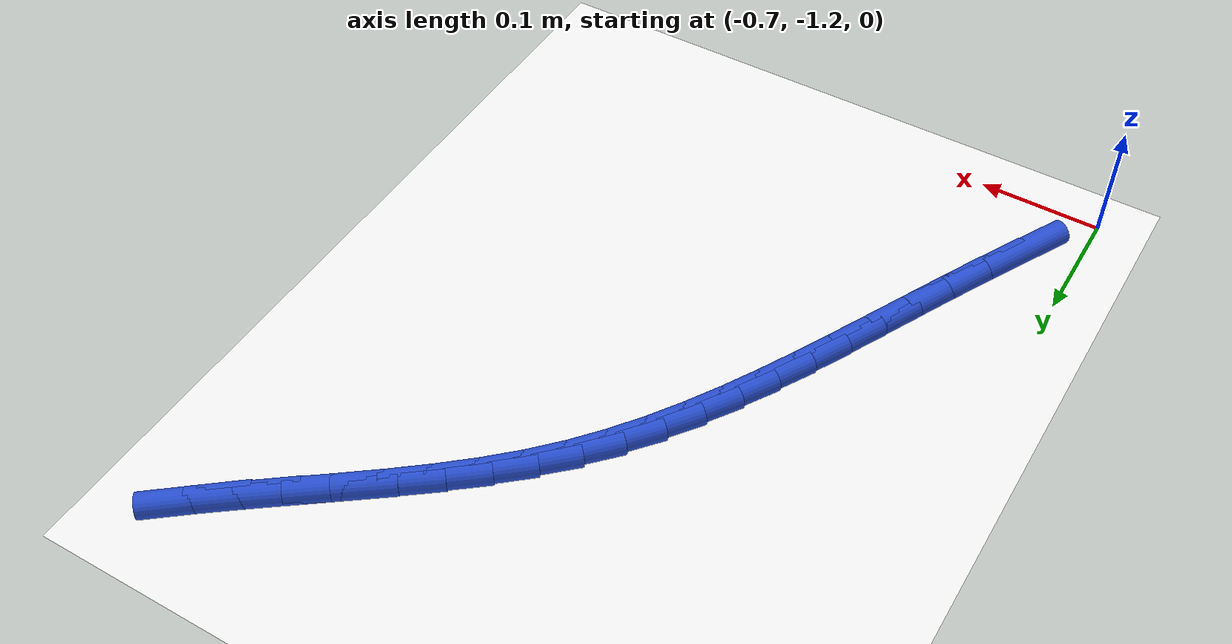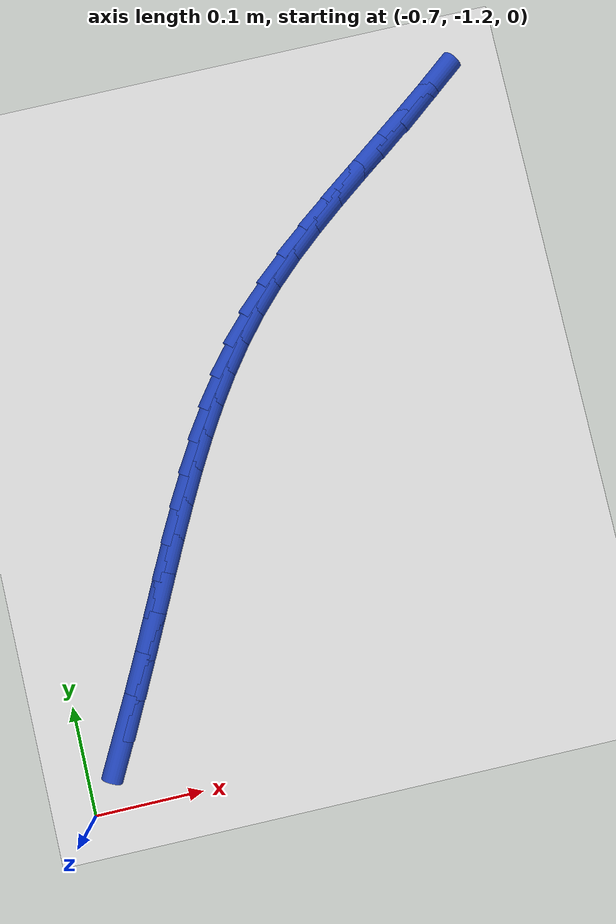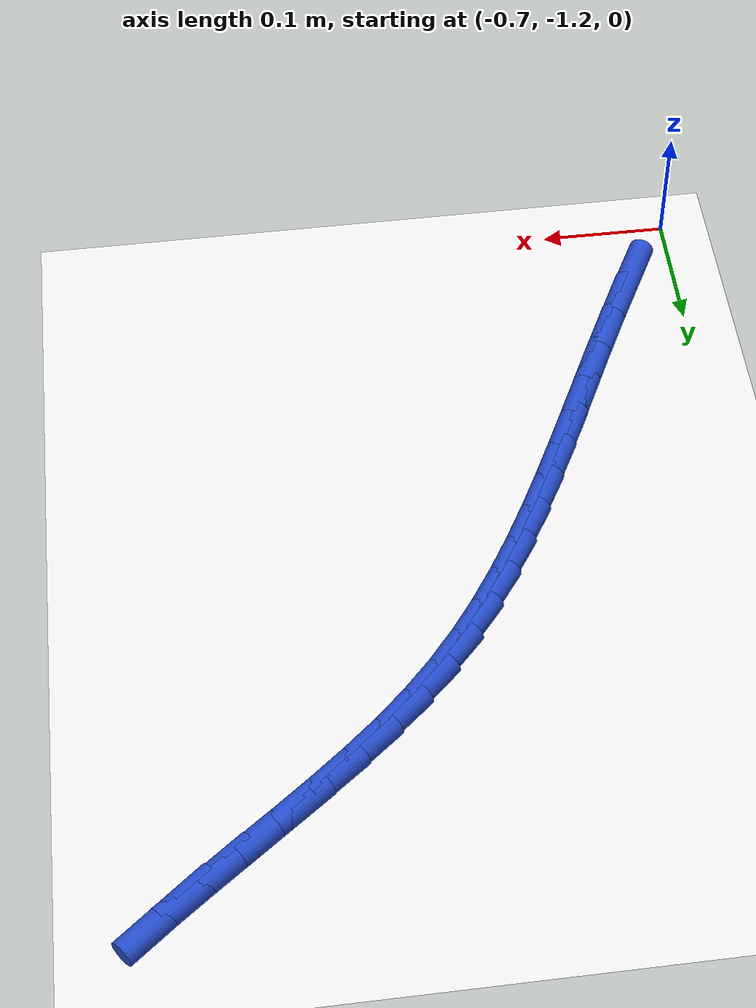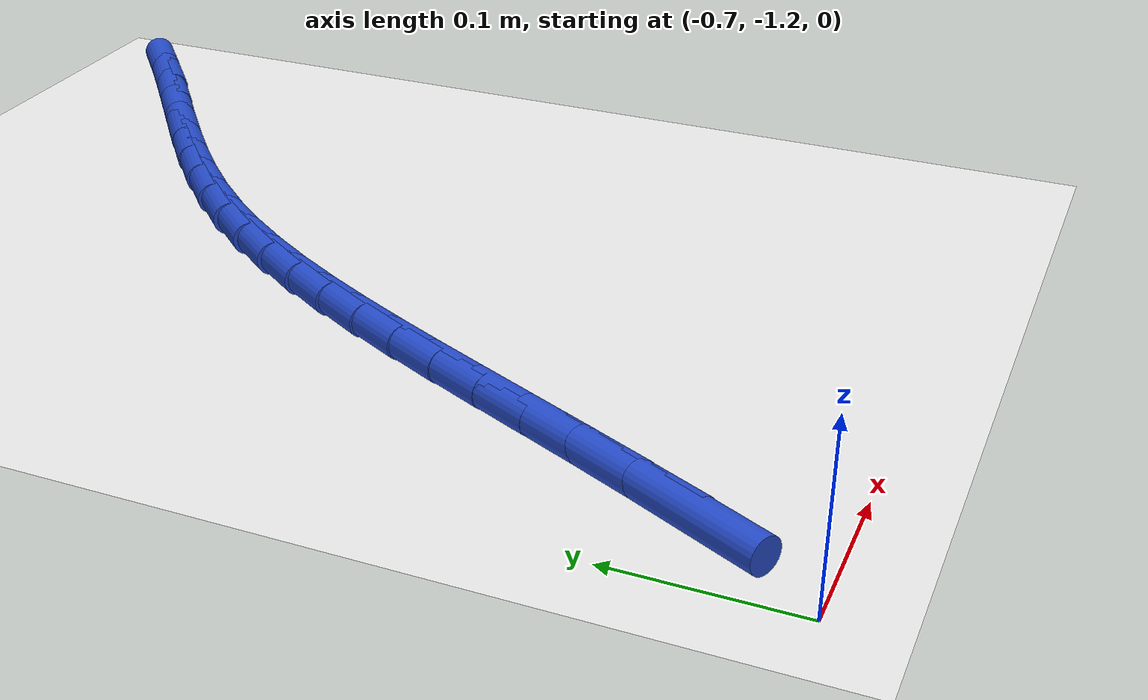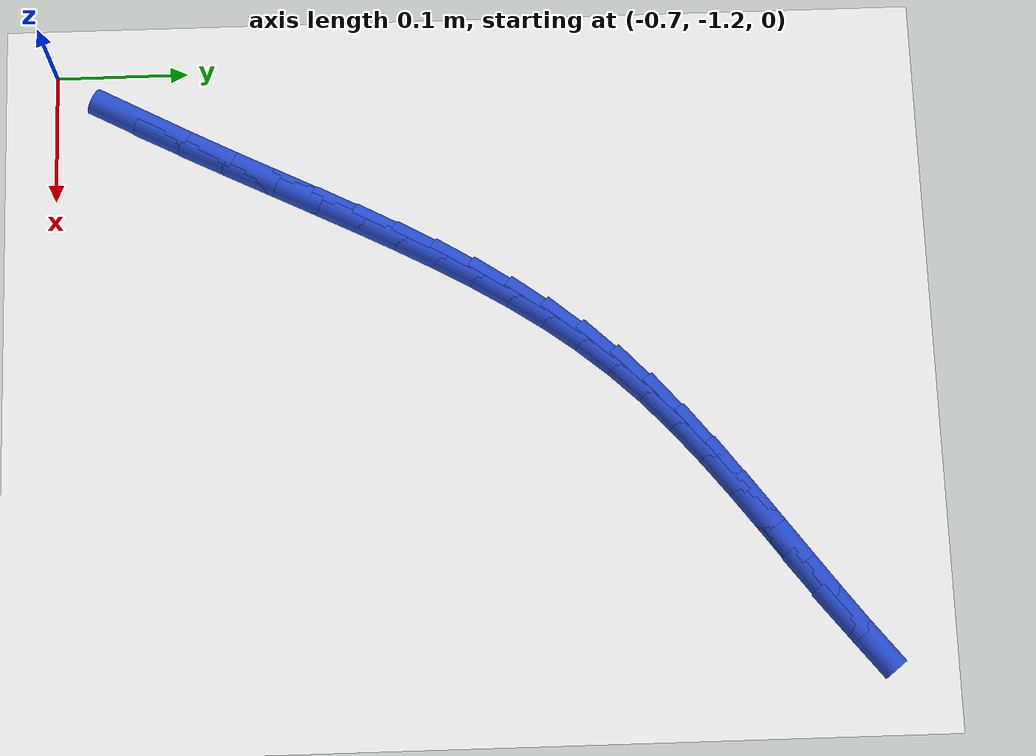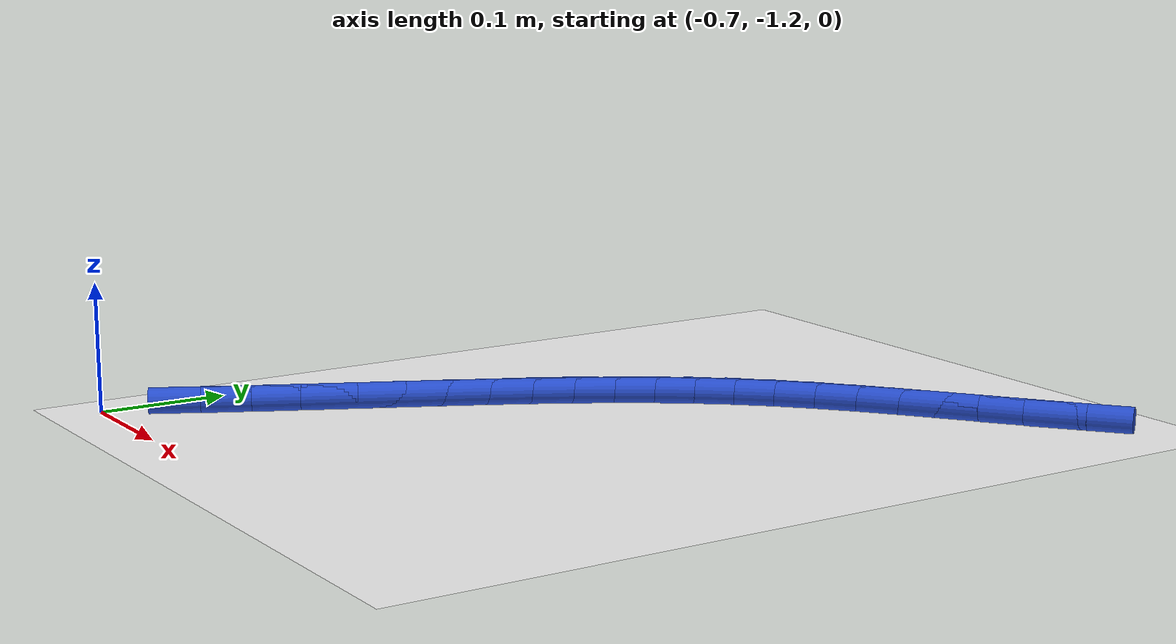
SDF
<sdf version="1.6">
 <world name="default">
  <model name="ground_plane">
   <static>1</static>
   <link name="link">
    <collision name="collision">
     <geometry><plane><normal>0 0 1</normal><size>100 100</size></plane></geometry>
     <surface><friction><ode><mu>100</mu><mu2>50</mu2></ode></friction></surface>
    </collision>
    <visual name="visual">
     <cast_shadows>0</cast_shadows>
     <geometry><plane><normal>0 0 1</normal><size>100 100</size></plane></geometry>
     <material>
      <script><uri>file://media/materials/scripts/gazebo.material</uri><name>Gazebo/WhiteGlow</name></script>
     </material>
    </visual>
   </link>
  </model>
  <model name="line">
   <link name="link_199">
    <pose>-0.6586885867396759 -1.135169909347396 0.01 0 1.57 1.0867816929488996</pose>
    <collision name="collision">
     <geometry><cylinder><radius>0.01</radius><length>0.08</length></cylinder></geometry>
    </collision>
    <visual name="visual">
     <material>
      <script><name>Gazebo/Blue</name><uri>file://media/materials/scripts/gazebo.material</uri></script>
     </material>
     <geometry><cylinder><radius>0.01</radius><length>0.08</length></cylinder></geometry>
    </visual>
   </link>
   <link name="link_200">
    <pose>-0.6405289756650119 -1.1006278290008211 0.01 0 1.57 1.1014072671670945</pose>
    <collision name="collision">
     <geometry><cylinder><radius>0.01</radius><length>0.08</length></cylinder></geometry>
    </collision>
    <visual name="visual">
     <material>
      <script><name>Gazebo/Blue</name><uri>file://media/materials/scripts/gazebo.material</uri></script>
     </material>
     <geometry><cylinder><radius>0.01</radius><length>0.08</length></cylinder></geometry>
    </visual>
   </link>
   <link name="link_201">
    <pose>-0.6232869438973239 -1.066633122969182 0.01 0 1.57 1.1103361699796</pose>
    <collision name="collision">
     <geometry><cylinder><radius>0.01</radius><length>0.08</length></cylinder></geometry>
    </collision>
    <visual name="visual">
     <material>
      <script><name>Gazebo/Blue</name><uri>file://media/materials/scripts/gazebo.material</uri></script>
     </material>
     <geometry><cylinder><radius>0.01</radius><length>0.08</length></cylinder></geometry>
    </visual>
   </link>
   <link name="link_202">
    <pose>-0.6069051341385295 -1.0336067463336438 0.01 0 1.57 1.113435305082633</pose>
    <collision name="collision">
     <geometry><cylinder><radius>0.01</radius><length>0.08</length></cylinder></geometry>
    </collision>
    <visual name="visual">
     <material>
      <script><name>Gazebo/Blue</name><uri>file://media/materials/scripts/gazebo.material</uri></script>
     </material>
     <geometry><cylinder><radius>0.01</radius><length>0.08</length></cylinder></geometry>
    </visual>
   </link>
   <link name="link_203">
    <pose>-0.5911496710013276 -1.001594266864605 0.01 0 1.57 1.1101144476477494</pose>
    <collision name="collision">
     <geometry><cylinder><radius>0.01</radius><length>0.08</length></cylinder></geometry>
    </collision>
    <visual name="visual">
     <material>
      <script><name>Gazebo/Blue</name><uri>file://media/materials/scripts/gazebo.material</uri></script>
     </material>
     <geometry><cylinder><radius>0.01</radius><length>0.08</length></cylinder></geometry>
    </visual>
   </link>
   <link name="link_204">
    <pose>-0.5757675063835092 -0.9706004792087508 0.01 0 1.57 1.0997883629203242</pose>
    <collision name="collision">
     <geometry><cylinder><radius>0.01</radius><length>0.08</length></cylinder></geometry>
    </collision>
    <visual name="visual">
     <material>
      <script><name>Gazebo/Blue</name><uri>file://media/materials/scripts/gazebo.material</uri></script>
     </material>
     <geometry><cylinder><radius>0.01</radius><length>0.08</length></cylinder></geometry>
    </visual>
   </link>
   <link name="link_205">
    <pose>-0.5605055921828646 -0.9406301780127659 0.01 0 1.57 1.0819434244367776</pose>
    <collision name="collision">
     <geometry><cylinder><radius>0.01</radius><length>0.08</length></cylinder></geometry>
    </collision>
    <visual name="visual">
     <material>
      <script><name>Gazebo/Blue</name><uri>file://media/materials/scripts/gazebo.material</uri></script>
     </material>
     <geometry><cylinder><radius>0.01</radius><length>0.08</length></cylinder></geometry>
    </visual>
   </link>
   <link name="link_206">
    <pose>-0.5451108802971844 -0.9116881579233361 0.01 0 1.57 1.0561838076359735</pose>
    <collision name="collision">
     <geometry><cylinder><radius>0.01</radius><length>0.08</length></cylinder></geometry>
    </collision>
    <visual name="visual">
     <material>
      <script><name>Gazebo/Blue</name><uri>file://media/materials/scripts/gazebo.material</uri></script>
     </material>
     <geometry><cylinder><radius>0.01</radius><length>0.08</length></cylinder></geometry>
    </visual>
   </link>
   <link name="link_207">
    <pose>-0.5293303226242594 -0.8837792135871456 0.01 0 1.57 1.0222946219143583</pose>
    <collision name="collision">
     <geometry><cylinder><radius>0.01</radius><length>0.08</length></cylinder></geometry>
    </collision>
    <visual name="visual">
     <material>
      <script><name>Gazebo/Blue</name><uri>file://media/materials/scripts/gazebo.material</uri></script>
     </material>
     <geometry><cylinder><radius>0.01</radius><length>0.08</length></cylinder></geometry>
    </visual>
   </link>
   <link name="link_208">
    <pose>-0.5129108710618798 -0.856908139650879 0.01 0 1.57 0.9803196599974384</pose>
    <collision name="collision">
     <geometry><cylinder><radius>0.01</radius><length>0.08</length></cylinder></geometry>
    </collision>
    <visual name="visual">
     <material>
      <script><name>Gazebo/Blue</name><uri>file://media/materials/scripts/gazebo.material</uri></script>
     </material>
     <geometry><cylinder><radius>0.01</radius><length>0.08</length></cylinder></geometry>
    </visual>
   </link>
   <link name="link_209">
    <pose>-0.49559947750783717 -0.831079730761223 0.01 0 1.57 0.9306436625205351</pose>
    <collision name="collision">
     <geometry><cylinder><radius>0.01</radius><length>0.08</length></cylinder></geometry>
    </collision>
    <visual name="visual">
     <material>
      <script><name>Gazebo/Blue</name><uri>file://media/materials/scripts/gazebo.material</uri></script>
     </material>
     <geometry><cylinder><radius>0.01</radius><length>0.08</length></cylinder></geometry>
    </visual>
   </link>
   <link name="link_210">
    <pose>-0.47714309385992165 -0.8062987815648615 0.01 0 1.57 0.8740590124173497</pose>
    <collision name="collision">
     <geometry><cylinder><radius>0.01</radius><length>0.08</length></cylinder></geometry>
    </collision>
    <visual name="visual">
     <material>
      <script><name>Gazebo/Blue</name><uri>file://media/materials/scripts/gazebo.material</uri></script>
     </material>
     <geometry><cylinder><radius>0.01</radius><length>0.08</length></cylinder></geometry>
    </visual>
   </link>
   <link name="link_211">
    <pose>-0.4572886720159238 -0.7825700867084795 0.01 0 1.57 0.8118590670998433</pose>
    <collision name="collision">
     <geometry><cylinder><radius>0.01</radius><length>0.08</length></cylinder></geometry>
    </collision>
    <visual name="visual">
     <material>
      <script><name>Gazebo/Blue</name><uri>file://media/materials/scripts/gazebo.material</uri></script>
     </material>
     <geometry><cylinder><radius>0.01</radius><length>0.08</length></cylinder></geometry>
    </visual>
   </link>
   <link name="link_212">
    <pose>-0.43578537659608135 -0.7598975869288702 0.01 0 1.57 0.7515719256466484</pose>
    <collision name="collision">
     <geometry><cylinder><radius>0.01</radius><length>0.08</length></cylinder></geometry>
    </collision>
    <visual name="visual">
     <material>
      <script><name>Gazebo/Blue</name><uri>file://media/materials/scripts/gazebo.material</uri></script>
     </material>
     <geometry><cylinder><radius>0.01</radius><length>0.08</length></cylinder></geometry>
    </visual>
   </link>
   <link name="link_213">
    <pose>-0.41257822100309177 -0.7382096431209144 0.01 0 1.57 0.7040815582700338</pose>
    <collision name="collision">
     <geometry><cylinder><radius>0.01</radius><length>0.08</length></cylinder></geometry>
    </collision>
    <visual name="visual">
     <material>
      <script><name>Gazebo/Blue</name><uri>file://media/materials/scripts/gazebo.material</uri></script>
     </material>
     <geometry><cylinder><radius>0.01</radius><length>0.08</length></cylinder></geometry>
    </visual>
   </link>
   <link name="link_214">
    <pose>-0.38795899834365843 -0.7173007907102827 0.01 0 1.57 0.6696378920233998</pose>
    <collision name="collision">
     <geometry><cylinder><radius>0.01</radius><length>0.08</length></cylinder></geometry>
    </collision>
    <visual name="visual">
     <material>
      <script><name>Gazebo/Blue</name><uri>file://media/materials/scripts/gazebo.material</uri></script>
     </material>
     <geometry><cylinder><radius>0.01</radius><length>0.08</length></cylinder></geometry>
    </visual>
   </link>
   <link name="link_215">
    <pose>-0.36225502541995364 -0.6969518562026613 0.01 0 1.57 0.647411021180864</pose>
    <collision name="collision">
     <geometry><cylinder><radius>0.01</radius><length>0.08</length></cylinder></geometry>
    </collision>
    <visual name="visual">
     <material>
      <script><name>Gazebo/Blue</name><uri>file://media/materials/scripts/gazebo.material</uri></script>
     </material>
     <geometry><cylinder><radius>0.01</radius><length>0.08</length></cylinder></geometry>
    </visual>
   </link>
   <link name="link_216">
    <pose>-0.3357936190341525 -0.6769436661037385 0.01 0 1.57 0.6367552939895209</pose>
    <collision name="collision">
     <geometry><cylinder><radius>0.01</radius><length>0.08</length></cylinder></geometry>
    </collision>
    <visual name="visual">
     <material>
      <script><name>Gazebo/Blue</name><uri>file://media/materials/scripts/gazebo.material</uri></script>
     </material>
     <geometry><cylinder><radius>0.01</radius><length>0.08</length></cylinder></geometry>
    </visual>
   </link>
   <link name="link_217">
    <pose>-0.3089020959884273 -0.6570570469192001 0.01 0 1.57 0.6372719157328394</pose>
    <collision name="collision">
     <geometry><cylinder><radius>0.01</radius><length>0.08</length></cylinder></geometry>
    </collision>
    <visual name="visual">
     <material>
      <script><name>Gazebo/Blue</name><uri>file://media/materials/scripts/gazebo.material</uri></script>
     </material>
     <geometry><cylinder><radius>0.01</radius><length>0.08</length></cylinder></geometry>
    </visual>
   </link>
   <link name="link_218">
    <pose>-0.28190777308495124 -0.6370728251547325 0.01 0 1.57 0.6488264642698075</pose>
    <collision name="collision">
     <geometry><cylinder><radius>0.01</radius><length>0.08</length></cylinder></geometry>
    </collision>
    <visual name="visual">
     <material>
      <script><name>Gazebo/Blue</name><uri>file://media/materials/scripts/gazebo.material</uri></script>
     </material>
     <geometry><cylinder><radius>0.01</radius><length>0.08</length></cylinder></geometry>
    </visual>
   </link>
   <link name="link_219">
    <pose>-0.2551379671258978 -0.6167718273160231 0.01 0 1.57 0.6715365167911802</pose>
    <collision name="collision">
     <geometry><cylinder><radius>0.01</radius><length>0.08</length></cylinder></geometry>
    </collision>
    <visual name="visual">
     <material>
      <script><name>Gazebo/Blue</name><uri>file://media/materials/scripts/gazebo.material</uri></script>
     </material>
     <geometry><cylinder><radius>0.01</radius><length>0.08</length></cylinder></geometry>
    </visual>
   </link>
  </model>
 </world>
</sdf>
